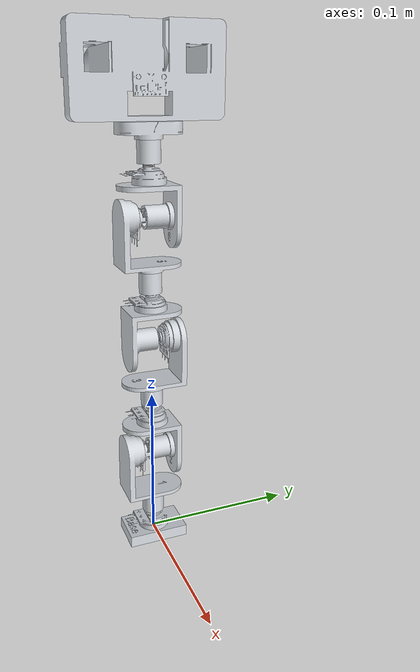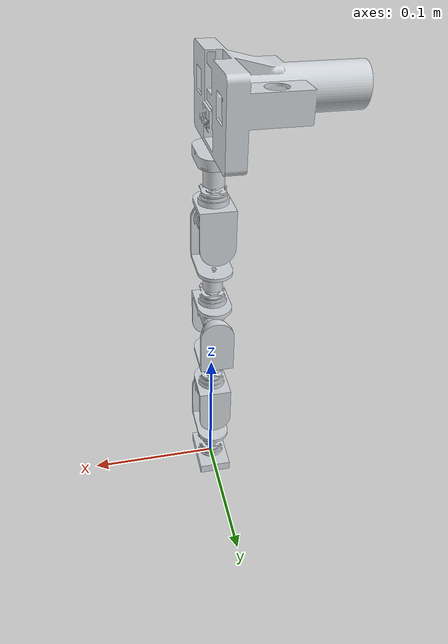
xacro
<?xml version="1.0"?>
<robot xmlns:xacro="http://www.ros.org/wiki/xacro" name="master_arm_cad">

  <xacro:property name="M" value="0.001"/>
  <!-- Inferred joint heights, mm, from the CAD. -->
  <xacro:property name="JZ" value="${[23.0, 60.7, 103.0, 139.7, 180.0, 218.7, 260.0]}"/>
  <xacro:property name="MESH" value="package://srl_description/meshes/master_arm_cad"/>
  <!-- Pot mechanical travel. ASSUMED, not measured from the model. -->
  <xacro:property name="POT_LIM" value="2.618"/>

  <material name="cad_print">
    <color rgba="0.82 0.84 0.86 1.0"/>
  </material>
  <material name="cad_pot">
    <color rgba="0.25 0.62 0.70 1.0"/>
  </material>

  <xacro:macro name="cad_link" params="name z_off mat:=cad_print">
    <link name="${name}">
      <visual>
        <origin xyz="0 0 ${-z_off * M}" rpy="0 0 0"/>
        <geometry><mesh filename="${MESH}/${name}.stl"/></geometry>
        <material name="${mat}"/>
      </visual>
      <collision>
        <origin xyz="0 0 ${-z_off * M}" rpy="0 0 0"/>
        <geometry><mesh filename="${MESH}/${name}_collision.stl"/></geometry>
      </collision>
      <inertial>
        <mass value="0.02"/>
        <origin xyz="0 0 0.02"/>
        <inertia ixx="1e-5" ixy="0" ixz="0" iyy="1e-5" iyz="0" izz="1e-5"/>
      </inertial>
    </link>
  </xacro:macro>

  <link name="master_base"/>

  <xacro:cad_link name="base" z_off="0"/>
  <joint name="base_to_arm" type="fixed">
    <parent link="master_base"/>
    <child link="base"/>
    <origin xyz="0 0 0" rpy="0 0 0"/>
  </joint>

  <!-- The chain. Axis alternates z (roll) / y (bend), exactly as the seven
       pot bodies' short dimensions say. Origins are the DIFFERENCES between
       consecutive inferred joint heights. -->
  <xacro:macro name="cad_joint" params="idx parent child z_prev z_this axis">
    <joint name="master_j${idx}" type="revolute">
      <parent link="${parent}"/>
      <child link="${child}"/>
      <origin xyz="0 0 ${(z_this - z_prev) * M}" rpy="0 0 0"/>
      <axis xyz="${axis}"/>
      <limit lower="${-POT_LIM}" upper="${POT_LIM}" effort="1" velocity="3"/>
    </joint>
  </xacro:macro>

  <xacro:cad_link name="link1" z_off="${JZ[0]}"/>
  <xacro:cad_link name="link2" z_off="${JZ[1]}"/>
  <xacro:cad_link name="link3" z_off="${JZ[2]}"/>
  <xacro:cad_link name="link4" z_off="${JZ[3]}"/>
  <xacro:cad_link name="link5" z_off="${JZ[4]}"/>
  <xacro:cad_link name="link6" z_off="${JZ[5]}"/>
  <xacro:cad_link name="link7" z_off="${JZ[6]}"/>

  <xacro:cad_joint idx="1" parent="base"  child="link1" z_prev="0"      z_this="${JZ[0]}" axis="0 0 1"/>
  <xacro:cad_joint idx="2" parent="link1" child="link2" z_prev="${JZ[0]}" z_this="${JZ[1]}" axis="0 1 0"/>
  <xacro:cad_joint idx="3" parent="link2" child="link3" z_prev="${JZ[1]}" z_this="${JZ[2]}" axis="0 0 1"/>
  <xacro:cad_joint idx="4" parent="link3" child="link4" z_prev="${JZ[2]}" z_this="${JZ[3]}" axis="0 1 0"/>
  <xacro:cad_joint idx="5" parent="link4" child="link5" z_prev="${JZ[3]}" z_this="${JZ[4]}" axis="0 0 1"/>
  <xacro:cad_joint idx="6" parent="link5" child="link6" z_prev="${JZ[4]}" z_this="${JZ[5]}" axis="0 1 0"/>
  <xacro:cad_joint idx="7" parent="link6" child="link7" z_prev="${JZ[5]}" z_this="${JZ[6]}" axis="0 0 1"/>

  <!-- The grip point, at the top of the printed part. This is where the
       operator holds it, NOT a joint. -->
  <link name="master_tip"/>
  <joint name="link7_to_tip" type="fixed">
    <parent link="link7"/>
    <child link="master_tip"/>
    <origin xyz="0 0 ${(331.7 - JZ[6]) * M}" rpy="0 0 0"/>
  </joint>

</robot>
